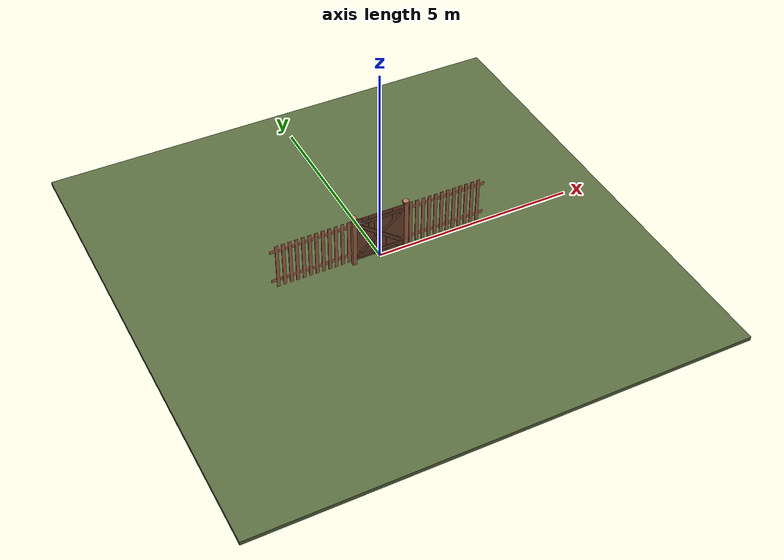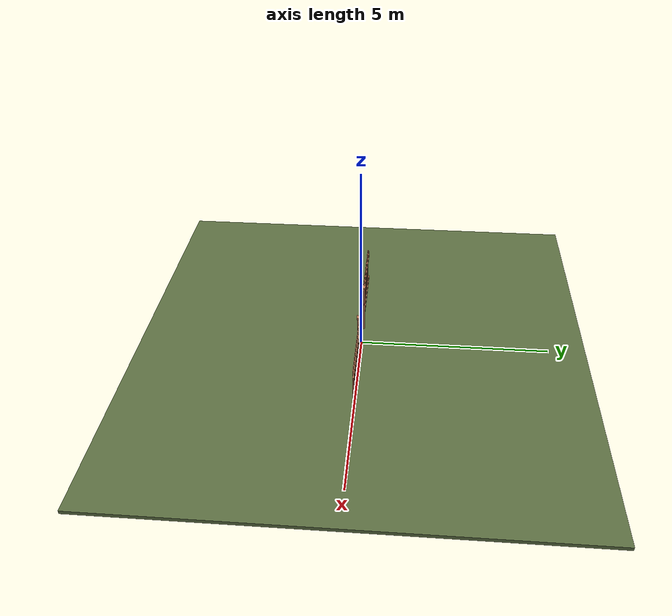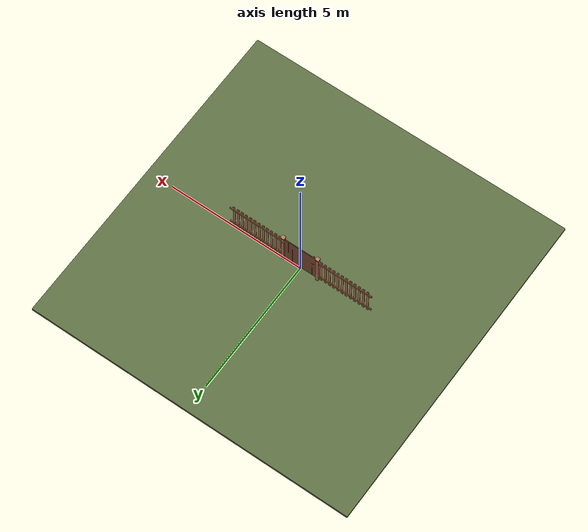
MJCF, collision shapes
<?xml version="1.0" ?>
<mujoco model="db0098_gate_swing_full">
  <compiler angle="radian" meshdir="../../hardware" texturedir="../../textures" autolimits="true" inertiafromgeom="false"/>
  <option timestep="0.002" integrator="implicitfast" cone="elliptic" impratio="10" noslip_iterations="3">
    <flag multiccd="enable"/>
  </option>
  <size memory="16M"/>
  <default>
    <geom condim="4" solref="0.005 1" solimp="0.95 0.99 0.001"/>
    <joint solreflimit="0.005 1" solimplimit="0.95 0.99 0.001"/>
    <tendon solreflimit="0.005 1"/>
    <equality solref="0.002 1"/>
  </default>
  <visual>
    <headlight ambient="0.4 0.4 0.4" diffuse="0.7 0.7 0.7" specular="0.2 0.2 0.2"/>
    <quality shadowsize="4096"/>
    <map znear="0.01" zfar="60"/>
  </visual>
  <asset>
    <mesh name="ring_cc5c941a8a" file="ring_cc5c941a8a.obj"/>
    <mesh name="strap_hinge_f1a982ddce" file="strap_hinge_f1a982ddce.obj"/>
    <material name="mat_floor" rgba="0.35 0.42 0.25 1" specular="0.2" shininess="0.15" reflectance="0"/>
    <material name="mat_wall" rgba="0.78 0.76 0.7 1" specular="0.2" shininess="0.1" reflectance="0"/>
    <material name="mat_leaf" rgba="0.485 0.296 0.2 1" specular="0.2" shininess="0.4" reflectance="0"/>
    <material name="mat_leaf_brace" rgba="0.436 0.267 0.18 1" specular="0.2" shininess="0.2" reflectance="0"/>
    <material name="mat_hinge" rgba="0.65 0.66 0.68 1" specular="0.74" shininess="0.5" reflectance="0.36"/>
    <material name="mat_op_wrought_iron" rgba="0.08 0.08 0.09 1" specular="0.56" shininess="0.25" reflectance="0.24"/>
    <material name="mat_op_steel_galvanized" rgba="0.65 0.66 0.68 1" specular="0.74" shininess="0.5" reflectance="0.36"/>
    <material name="mat_padlock" rgba="0.85 0.66 0.3 1" specular="0.8" shininess="0.75" reflectance="0.4"/>
    <material name="mat_frame" rgba="0.7 0.45 0.32 1" specular="0.2" shininess="0.4" reflectance="0"/>
    <material name="mat_fence" rgba="0.7 0.45 0.32 1" specular="0.2" shininess="0.4" reflectance="0"/>
    <texture name="skybox" type="skybox" builtin="gradient" rgb1="0.6 0.7 0.85" rgb2="0.9 0.92 0.95" width="256" height="256"/>
  </asset>
  <worldbody>
    <light name="sun" pos="1.5 -2.5 4" dir="-0.3 0.5 -0.8" directional="true" diffuse="0.8 0.8 0.8" specular="0.3 0.3 0.3" castshadow="true"/>
    <light name="fill" pos="-1.5 2.5 3" dir="0.3 -0.5 -0.7" directional="true" diffuse="0.35 0.35 0.4" castshadow="false"/>
    <camera name="robot_view" pos="0 -1.875 1.135" xyaxes="1 0 0 0 0.26963 0.962964" fovy="52"/>
    <camera name="far_view" pos="0 1.875 1.135" xyaxes="-1 0 0 0 -0.26963 0.962964" fovy="52"/>
    <camera name="iso" pos="-1.425 -1.575 1.435" xyaxes="0.741536 -0.670913 0 0.242917 0.268487 0.932151" fovy="46"/>
    <camera name="detail_handle" pos="-0.312 -0.8445 1.22" xyaxes="0.97561 0.219512 0 -0.070934 0.315262 0.94635" fovy="38"/>
    <geom name="floor" type="box" size="6 6 0.05" pos="0 0 -0.05" material="mat_floor" group="0" contype="1" conaffinity="1" friction="0.8 0.005 0.0001" density="2400"/>
    <geom name="hinge_pintle_0" type="cylinder" size="0.008 0.02" pos="0.603 0.05 0.224" material="mat_hinge" group="1" contype="0" conaffinity="0" density="7850"/>
    <geom name="hinge_pintle_1" type="cylinder" size="0.008 0.02" pos="0.603 0.05 1.124" material="mat_hinge" group="1" contype="0" conaffinity="0" density="7850"/>
    <geom name="leaf_staple_leg_n" type="box" size="0.003 0.0025 0.013" pos="-0.634 -0.063 1.2125" quat="0 0 -0.707107 0.707107" material="mat_op_steel_galvanized" group="0" contype="1" conaffinity="1" friction="0.6 0.005 0.0001" density="7800"/>
    <geom name="leaf_staple_leg_p" type="box" size="0.003 0.0025 0.013" pos="-0.634 -0.063 1.1875" quat="0 0 -0.707107 0.707107" material="mat_op_steel_galvanized" group="0" contype="1" conaffinity="1" friction="0.6 0.005 0.0001" density="7800"/>
    <geom name="leaf_staple_bridge" type="box" size="0.003 0.015 0.0025" pos="-0.634 -0.0735 1.2" quat="0 0 -0.707107 0.707107" material="mat_op_steel_galvanized" group="0" contype="1" conaffinity="1" friction="0.6 0.005 0.0001" density="7800"/>
    <geom name="leaf_staple_base" type="box" size="0.016 0.021 0.001" pos="-0.634 -0.051 1.2" quat="0 0 -0.707107 0.707107" material="mat_op_steel_galvanized" group="1" contype="0" conaffinity="0" density="7800"/>
    <geom name="post_hinge" type="box" size="0.05 0.05 0.675" pos="0.656 0 0.675" material="mat_frame" group="0" contype="1" conaffinity="1" friction="0.6 0.005 0.0001" density="350"/>
    <geom name="post_hinge_cap" type="box" size="0.065 0.065 0.02" pos="0.656 0 1.37" material="mat_frame" group="1" contype="0" conaffinity="0" density="350"/>
    <geom name="post_latch" type="box" size="0.05 0.05 0.675" pos="-0.656 0 0.675" material="mat_frame" group="0" contype="1" conaffinity="1" friction="0.6 0.005 0.0001" density="350"/>
    <geom name="post_latch_cap" type="box" size="0.065 0.065 0.02" pos="-0.656 0 1.37" material="mat_frame" group="1" contype="0" conaffinity="0" density="350"/>
    <geom name="gate_stop" type="box" size="0.02 0.012 0.06" pos="-0.586 -0.0465 0.35" material="mat_frame" group="0" contype="1" conaffinity="1" friction="0.6 0.005 0.0001" density="350"/>
    <geom name="fence_picket_l_0" type="box" size="0.04 0.01 0.6" pos="-0.786 0 0.7" material="mat_fence" group="0" contype="1" conaffinity="1" friction="0.6 0.005 0.0001" density="400"/>
    <geom name="fence_picket_l_1" type="box" size="0.04 0.01 0.6" pos="-0.946 0 0.7" material="mat_fence" group="0" contype="1" conaffinity="1" friction="0.6 0.005 0.0001" density="400"/>
    <geom name="fence_picket_l_2" type="box" size="0.04 0.01 0.6" pos="-1.106 0 0.7" material="mat_fence" group="0" contype="1" conaffinity="1" friction="0.6 0.005 0.0001" density="400"/>
    <geom name="fence_picket_l_3" type="box" size="0.04 0.01 0.6" pos="-1.266 0 0.7" material="mat_fence" group="0" contype="1" conaffinity="1" friction="0.6 0.005 0.0001" density="400"/>
    <geom name="fence_picket_l_4" type="box" size="0.04 0.01 0.6" pos="-1.426 0 0.7" material="mat_fence" group="0" contype="1" conaffinity="1" friction="0.6 0.005 0.0001" density="400"/>
    <geom name="fence_picket_l_5" type="box" size="0.04 0.01 0.6" pos="-1.586 0 0.7" material="mat_fence" group="0" contype="1" conaffinity="1" friction="0.6 0.005 0.0001" density="400"/>
    <geom name="fence_picket_l_6" type="box" size="0.04 0.01 0.6" pos="-1.746 0 0.7" material="mat_fence" group="0" contype="1" conaffinity="1" friction="0.6 0.005 0.0001" density="400"/>
    <geom name="fence_picket_l_7" type="box" size="0.04 0.01 0.6" pos="-1.906 0 0.7" material="mat_fence" group="0" contype="1" conaffinity="1" friction="0.6 0.005 0.0001" density="400"/>
    <geom name="fence_picket_l_8" type="box" size="0.04 0.01 0.6" pos="-2.066 0 0.7" material="mat_fence" group="0" contype="1" conaffinity="1" friction="0.6 0.005 0.0001" density="400"/>
    <geom name="fence_picket_l_9" type="box" size="0.04 0.01 0.6" pos="-2.226 0 0.7" material="mat_fence" group="0" contype="1" conaffinity="1" friction="0.6 0.005 0.0001" density="400"/>
    <geom name="fence_picket_l_10" type="box" size="0.04 0.01 0.6" pos="-2.386 0 0.7" material="mat_fence" group="0" contype="1" conaffinity="1" friction="0.6 0.005 0.0001" density="400"/>
    <geom name="fence_picket_l_11" type="box" size="0.04 0.01 0.6" pos="-2.546 0 0.7" material="mat_fence" group="0" contype="1" conaffinity="1" friction="0.6 0.005 0.0001" density="400"/>
    <geom name="fence_rail_l" type="box" size="1 0.015 0.04" pos="-1.706 0.015 1.15" material="mat_fence" group="0" contype="1" conaffinity="1" friction="0.6 0.005 0.0001" density="400"/>
    <geom name="fence_rail_b_l" type="box" size="1 0.015 0.04" pos="-1.706 0.015 0.3" material="mat_fence" group="0" contype="1" conaffinity="1" friction="0.6 0.005 0.0001" density="400"/>
    <geom name="fence_picket_r_0" type="box" size="0.04 0.01 0.6" pos="0.786 0 0.7" material="mat_fence" group="0" contype="1" conaffinity="1" friction="0.6 0.005 0.0001" density="400"/>
    <geom name="fence_picket_r_1" type="box" size="0.04 0.01 0.6" pos="0.946 0 0.7" material="mat_fence" group="0" contype="1" conaffinity="1" friction="0.6 0.005 0.0001" density="400"/>
    <geom name="fence_picket_r_2" type="box" size="0.04 0.01 0.6" pos="1.106 0 0.7" material="mat_fence" group="0" contype="1" conaffinity="1" friction="0.6 0.005 0.0001" density="400"/>
    <geom name="fence_picket_r_3" type="box" size="0.04 0.01 0.6" pos="1.266 0 0.7" material="mat_fence" group="0" contype="1" conaffinity="1" friction="0.6 0.005 0.0001" density="400"/>
    <geom name="fence_picket_r_4" type="box" size="0.04 0.01 0.6" pos="1.426 0 0.7" material="mat_fence" group="0" contype="1" conaffinity="1" friction="0.6 0.005 0.0001" density="400"/>
    <geom name="fence_picket_r_5" type="box" size="0.04 0.01 0.6" pos="1.586 0 0.7" material="mat_fence" group="0" contype="1" conaffinity="1" friction="0.6 0.005 0.0001" density="400"/>
    <geom name="fence_picket_r_6" type="box" size="0.04 0.01 0.6" pos="1.746 0 0.7" material="mat_fence" group="0" contype="1" conaffinity="1" friction="0.6 0.005 0.0001" density="400"/>
    <geom name="fence_picket_r_7" type="box" size="0.04 0.01 0.6" pos="1.906 0 0.7" material="mat_fence" group="0" contype="1" conaffinity="1" friction="0.6 0.005 0.0001" density="400"/>
    <geom name="fence_picket_r_8" type="box" size="0.04 0.01 0.6" pos="2.066 0 0.7" material="mat_fence" group="0" contype="1" conaffinity="1" friction="0.6 0.005 0.0001" density="400"/>
    <geom name="fence_picket_r_9" type="box" size="0.04 0.01 0.6" pos="2.226 0 0.7" material="mat_fence" group="0" contype="1" conaffinity="1" friction="0.6 0.005 0.0001" density="400"/>
    <geom name="fence_picket_r_10" type="box" size="0.04 0.01 0.6" pos="2.386 0 0.7" material="mat_fence" group="0" contype="1" conaffinity="1" friction="0.6 0.005 0.0001" density="400"/>
    <geom name="fence_picket_r_11" type="box" size="0.04 0.01 0.6" pos="2.546 0 0.7" material="mat_fence" group="0" contype="1" conaffinity="1" friction="0.6 0.005 0.0001" density="400"/>
    <geom name="fence_rail_r" type="box" size="1 0.015 0.04" pos="1.706 0.015 1.15" material="mat_fence" group="0" contype="1" conaffinity="1" friction="0.6 0.005 0.0001" density="400"/>
    <geom name="fence_rail_b_r" type="box" size="1 0.015 0.04" pos="1.706 0.015 0.3" material="mat_fence" group="0" contype="1" conaffinity="1" friction="0.6 0.005 0.0001" density="400"/>
    <geom name="hinge_pintle_1_strap_0" type="box" size="0.048 0.0152 0.016" pos="0.6585 0.0412 1.124" material="mat_hinge" group="1" contype="0" conaffinity="0" density="7850"/>
    <site name="approach_point" pos="0 -1.5 0" quat="1 0 0 0" size="0.05" rgba="0.2 0.9 0.2 0.5" group="4"/>
    <site name="goal_point" pos="0 1.5 0" quat="1 0 0 0" size="0.05" rgba="0.2 0.9 0.2 0.5" group="4"/>
    <site name="door_plane_center" pos="0 0 0.61" quat="1 0 0 0" size="0.02" rgba="0.2 0.9 0.2 0.5" group="4"/>
    <body name="leaf" pos="0.606 0 0">
      <inertial pos="-0.592957 0.000785 0.733963" mass="14.53516" quat="0.676996 -0.676625 0.200078 0.209341" diaginertia="1.748146775 2.309026504 4.050457308"/>
      <joint name="leaf_hinge" type="hinge" axis="0 0 -1" pos="-0.003 0.05 0" limited="true" range="0 1.396263" damping="1.449391" frictionloss="0.986133" stiffness="5" springref="-0.8" armature="0.02"/>
      <geom name="leaf_slab" type="box" size="0.6 0.0125 0.6" pos="-0.603 0 0.7" material="mat_leaf" group="0" contype="1" conaffinity="1" friction="0.35 0.005 0.0001" density="1"/>
      <geom name="leaf_plank_gap_1" type="box" size="0.002 0.0135 0.59" pos="-0.153 0 0.7" material="mat_leaf_brace" group="1" contype="0" conaffinity="0" density="1"/>
      <geom name="leaf_plank_gap_2" type="box" size="0.002 0.0135 0.59" pos="-0.303 0 0.7" material="mat_leaf_brace" group="1" contype="0" conaffinity="0" density="1"/>
      <geom name="leaf_plank_gap_3" type="box" size="0.002 0.0135 0.59" pos="-0.453 0 0.7" material="mat_leaf_brace" group="1" contype="0" conaffinity="0" density="1"/>
      <geom name="leaf_plank_gap_4" type="box" size="0.002 0.0135 0.59" pos="-0.603 0 0.7" material="mat_leaf_brace" group="1" contype="0" conaffinity="0" density="1"/>
      <geom name="leaf_plank_gap_5" type="box" size="0.002 0.0135 0.59" pos="-0.753 0 0.7" material="mat_leaf_brace" group="1" contype="0" conaffinity="0" density="1"/>
      <geom name="leaf_plank_gap_6" type="box" size="0.002 0.0135 0.59" pos="-0.903 0 0.7" material="mat_leaf_brace" group="1" contype="0" conaffinity="0" density="1"/>
      <geom name="leaf_plank_gap_7" type="box" size="0.002 0.0135 0.59" pos="-1.053 0 0.7" material="mat_leaf_brace" group="1" contype="0" conaffinity="0" density="1"/>
      <geom name="leaf_batten_22" type="box" size="0.57 0.01 0.045" pos="-0.603 -0.0225 0.22" material="mat_leaf_brace" group="1" contype="0" conaffinity="0" density="1"/>
      <geom name="leaf_batten_118" type="box" size="0.57 0.01 0.045" pos="-0.603 -0.0225 1.18" material="mat_leaf_brace" group="1" contype="0" conaffinity="0" density="1"/>
      <geom name="leaf_brace_z" type="box" size="0.635072 0.01 0.045" pos="-0.603 -0.0225 0.7" quat="0.946384 0 0.323044 0" material="mat_leaf_brace" group="1" contype="0" conaffinity="0" density="1"/>
      <geom name="leaf_brace_x" type="box" size="0.635072 0.01 0.045" pos="-0.603 -0.0225 0.7" quat="0.946384 0 -0.323044 0" material="mat_leaf_brace" group="1" contype="0" conaffinity="0" density="1"/>
      <geom name="hinge_strap_0" type="mesh" mesh="strap_hinge_f1a982ddce" pos="-0.003 0.0155 0.25" quat="0 0 0 1" material="mat_hinge" group="1" contype="0" conaffinity="0" density="7850"/>
      <geom name="hinge_strap_eye_0" type="cylinder" size="0.011 0.012" pos="-0.003 0.05 0.25" material="mat_hinge" group="1" contype="0" conaffinity="0" density="7850"/>
      <geom name="hinge_strap_neck_0" type="box" size="0.012 0.02125 0.006" pos="-0.003 0.03275 0.25" material="mat_hinge" group="1" contype="0" conaffinity="0" density="7850"/>
      <geom name="hinge_strap_1" type="mesh" mesh="strap_hinge_f1a982ddce" pos="-0.003 0.0155 1.15" quat="0 0 0 1" material="mat_hinge" group="1" contype="0" conaffinity="0" density="7850"/>
      <geom name="hinge_strap_eye_1" type="cylinder" size="0.011 0.012" pos="-0.003 0.05 1.15" material="mat_hinge" group="1" contype="0" conaffinity="0" density="7850"/>
      <geom name="hinge_strap_neck_1" type="box" size="0.012 0.02125 0.006" pos="-0.003 0.03275 1.15" material="mat_hinge" group="1" contype="0" conaffinity="0" density="7850"/>
      <geom name="leaf_ring_pull_n" type="mesh" mesh="ring_cc5c941a8a" pos="-1.098 -0.0125 1" quat="0 0 -0.707107 0.707107" material="mat_op_wrought_iron" group="1" contype="0" conaffinity="0" density="3000"/>
      <geom name="leaf_ring_pull_col_n" type="capsule" size="0.008 0.05" pos="-1.098 -0.0445 0.94" quat="0.707107 0 0.707107 0" material="mat_op_wrought_iron" group="3" contype="1" conaffinity="1" rgba="0.8 0.3 0.3 0.25" friction="0.7 0.01 0.0001" density="3000"/>
      <geom name="leaf_ring_pull_p" type="mesh" mesh="ring_cc5c941a8a" pos="-1.098 0.0125 1" quat="0 0 0.707107 0.707107" material="mat_op_wrought_iron" group="1" contype="0" conaffinity="0" density="3000"/>
      <geom name="leaf_ring_pull_col_p" type="capsule" size="0.008 0.05" pos="-1.098 0.0445 0.94" quat="0.707107 0 0.707107 0" material="mat_op_wrought_iron" group="3" contype="1" conaffinity="1" rgba="0.8 0.3 0.3 0.25" friction="0.7 0.01 0.0001" density="3000"/>
      <geom name="leaf_hasp_plate" type="box" size="0.024 0.0215 0.02075" pos="-1.128 -0.03325 1.2" quat="0 0 -0.707107 0.707107" material="mat_op_steel_galvanized" group="1" contype="0" conaffinity="0" density="7800"/>
      <site name="leaf_ring_pull_grip_n" pos="-1.098 -0.0445 0.94" quat="1 0 0 0" size="0.012" rgba="0.2 0.9 0.2 0.5" group="4"/>
      <site name="leaf_ring_pull_grip_p" pos="-1.098 0.0445 0.94" quat="1 0 0 0" size="0.012" rgba="0.2 0.9 0.2 0.5" group="4"/>
      <site name="leaf_edge_mid" pos="-1.203 0 0.6" quat="1 0 0 0" size="0.02" rgba="0.2 0.9 0.2 0.5" group="4"/>
      <body name="leaf_hasp" pos="-1.148 -0.054 1.2">
        <inertial pos="0.044323 -0.01367 0" mass="0.11484" quat="0.695849 0.695849 -0.125677 -0.125677" diaginertia="0.000013089 0.000158235 0.000170826"/>
        <joint name="leaf_hasp_hinge" type="hinge" axis="0 0 1" limited="true" range="0 2.9" damping="0.02" frictionloss="0.05" armature="0.005" ref="2.8"/>
        <geom name="leaf_hasp_strap" type="box" size="0.057 0.0175 0.0015" pos="0.054209 -0.017681 0" quat="-0.696818 0.696818 -0.120185 0.120185" material="mat_op_steel_galvanized" group="0" contype="1" conaffinity="1" friction="0.6 0.005 0.0001" density="7800"/>
        <geom name="leaf_hasp_knuckle" type="cylinder" size="0.0045 0.0215" pos="0.00134 0.003769 0" quat="0.169967 0 0 0.98545" material="mat_op_steel_galvanized" group="1" contype="0" conaffinity="0" density="7850"/>
        <site name="leaf_hasp_grip" pos="0.091919 -0.022067 0" quat="0.169967 0 0 0.98545" size="0.01" rgba="0.2 0.9 0.2 0.5" group="4"/>
      </body>
    </body>
  </worldbody>
  <sensor>
    <jointpos name="leaf_hinge_pos" joint="leaf_hinge"/>
    <jointvel name="leaf_hinge_vel" joint="leaf_hinge"/>
    <jointpos name="leaf_hasp_hinge_pos" joint="leaf_hasp_hinge"/>
    <jointvel name="leaf_hasp_hinge_vel" joint="leaf_hasp_hinge"/>
  </sensor>
</mujoco>
